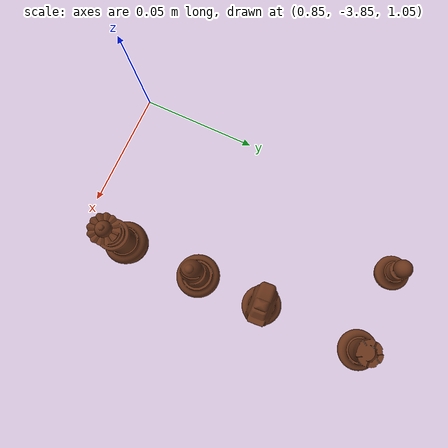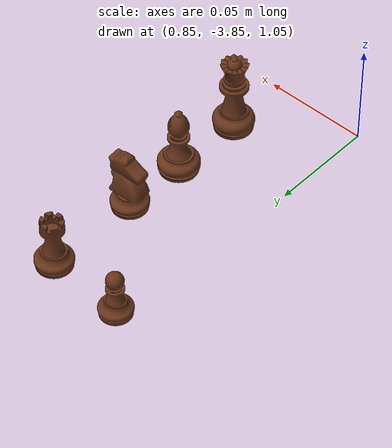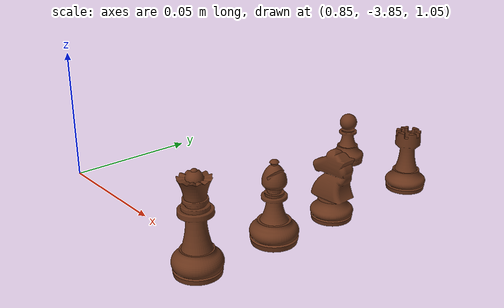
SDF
<sdf version="1.7">
 <world name="default">
  <model name="ground_plane">
   <static>1</static>
   <link name="link">
    <collision name="collision">
     <geometry><plane><normal>0 0 1</normal><size>100 100</size></plane></geometry>
     <surface>
      <contact><collide_bitmask>65535</collide_bitmask></contact>
      <friction><ode><mu>100</mu><mu2>50</mu2></ode></friction>
     </surface>
    </collision>
    <visual name="visual">
     <cast_shadows>0</cast_shadows>
     <geometry><plane><normal>0 0 1</normal><size>100 100</size></plane></geometry>
     <material>
      <script><uri>file://media/materials/scripts/gazebo.material</uri><name>Gazebo/Grey</name></script>
     </material>
    </visual>
   </link>
  </model>
  <model name="queen_black">
   <static>0</static>
   <link name="link_0">
    <inertial>
     <mass>0.01</mass>
     <inertia><ixx>1e-06</ixx><ixy>0</ixy><ixz>0</ixz><iyy>1e-06</iyy><iyz>0</iyz><izz>5e-07</izz></inertia>
    </inertial>
    <kinematic>1</kinematic>
    <visual name="visual">
     <geometry><mesh><uri>model://queen_black/meshes/queen.dae</uri><scale>1 1 1</scale></mesh></geometry>
     <material>
      <lighting>1</lighting>
      <script><uri>file://media/materials/scripts/gazebo.material</uri><name>Gazebo/Grey</name></script>
      <shader type="vertex"><normal_map>__default__</normal_map></shader>
      <ambient>0.62 0.31 0.12 1</ambient>
      <diffuse>0.4 0.2 0.1 1</diffuse>
      <specular>0.01 0.01 0.01 1</specular>
      <emissive>0 0 0 1</emissive>
     </material>
    </visual>
    <collision name="collision">
     <pose>0 0 0.015 0 -0 0</pose>
     <geometry><cylinder><radius>0.005</radius><length>0.03</length></cylinder></geometry>
     <surface>
      <friction><ode><mu>1</mu><mu2>1</mu2></ode></friction>
      <contact><ode><kp>1e+07</kp><kd>1</kd><max_vel>0.001</max_vel><min_depth>0.1</min_depth></ode></contact>
     </surface>
    </collision>
   </link>
   <pose>0.911171 -3.83568 1.02621 0 -0 0</pose>
  </model>
  <model name="bishop_black">
   <static>0</static>
   <link name="link_0">
    <inertial>
     <mass>0.01</mass>
     <inertia><ixx>1e-06</ixx><ixy>0</ixy><ixz>0</ixz><iyy>1e-06</iyy><iyz>0</iyz><izz>5e-07</izz></inertia>
    </inertial>
    <kinematic>1</kinematic>
    <visual name="visual">
     <geometry><mesh><uri>model://bishop_black/meshes/bishop.dae</uri><scale>1 1 1</scale></mesh></geometry>
     <material>
      <lighting>1</lighting>
      <script><uri>file://media/materials/scripts/gazebo.material</uri><name>Gazebo/Grey</name></script>
      <shader type="vertex"><normal_map>__default__</normal_map></shader>
      <ambient>0.62 0.31 0.12 1</ambient>
      <diffuse>0.4 0.2 0.1 1</diffuse>
      <specular>0.01 0.01 0.01 1</specular>
      <emissive>0 0 0 1</emissive>
     </material>
    </visual>
    <collision name="collision">
     <pose>0 0 0.015 0 -0 0</pose>
     <geometry><cylinder><radius>0.005</radius><length>0.03</length></cylinder></geometry>
     <surface>
      <friction><ode><mu>1</mu><mu2>1</mu2></ode></friction>
      <contact><ode><kp>1e+07</kp><kd>1</kd><max_vel>0.001</max_vel><min_depth>0.1</min_depth></ode></contact>
     </surface>
    </collision>
   </link>
   <pose>0.911171 -3.79833 1.02621 0 -0 0</pose>
  </model>
  <model name="knight_black">
   <static>0</static>
   <link name="link_0">
    <inertial>
     <mass>0.01</mass>
     <inertia><ixx>1e-06</ixx><ixy>0</ixy><ixz>0</ixz><iyy>1e-06</iyy><iyz>0</iyz><izz>5e-07</izz></inertia>
    </inertial>
    <kinematic>1</kinematic>
    <visual name="visual">
     <geometry><mesh><uri>model://knight_black/meshes/knight.dae</uri><scale>1 1 1</scale></mesh></geometry>
     <material>
      <lighting>1</lighting>
      <script><uri>file://media/materials/scripts/gazebo.material</uri><name>Gazebo/Grey</name></script>
      <shader type="vertex"><normal_map>__default__</normal_map></shader>
      <ambient>0.62 0.31 0.12 1</ambient>
      <diffuse>0.4 0.2 0.1 1</diffuse>
      <specular>0.01 0.01 0.01 1</specular>
      <emissive>0 0 0 1</emissive>
     </material>
    </visual>
    <collision name="collision">
     <pose>0 0 0.015 0 -0 0</pose>
     <geometry><cylinder><radius>0.005</radius><length>0.03</length></cylinder></geometry>
     <surface>
      <friction><ode><mu>1</mu><mu2>1</mu2></ode></friction>
      <contact><ode><kp>1e+07</kp><kd>1</kd><max_vel>0.001</max_vel><min_depth>0.1</min_depth></ode></contact>
     </surface>
    </collision>
   </link>
   <pose>0.911078 -3.76634 1.02624 -0.000163 -0.002282 -1.49951</pose>
  </model>
  <model name="rook_black">
   <static>0</static>
   <link name="link_0">
    <inertial>
     <mass>0.01</mass>
     <inertia><ixx>1e-06</ixx><ixy>0</ixy><ixz>0</ixz><iyy>1e-06</iyy><iyz>0</iyz><izz>5e-07</izz></inertia>
    </inertial>
    <kinematic>1</kinematic>
    <visual name="visual">
     <geometry><mesh><uri>model://rook_black/meshes/rook.dae</uri><scale>1 1 1</scale></mesh></geometry>
     <material>
      <lighting>1</lighting>
      <script><uri>file://media/materials/scripts/gazebo.material</uri><name>Gazebo/Grey</name></script>
      <shader type="vertex"><normal_map>__default__</normal_map></shader>
      <ambient>0.62 0.31 0.12 1</ambient>
      <diffuse>0.4 0.2 0.1 1</diffuse>
      <specular>0.01 0.01 0.01 1</specular>
      <emissive>0 0 0 1</emissive>
     </material>
    </visual>
    <collision name="collision">
     <pose>0 0 0.015 0 -0 0</pose>
     <geometry><cylinder><radius>0.005</radius><length>0.03</length></cylinder></geometry>
     <surface>
      <friction><ode><mu>1</mu><mu2>1</mu2></ode></friction>
      <contact><ode><kp>1e+07</kp><kd>1</kd><max_vel>0.001</max_vel><min_depth>0.1</min_depth></ode></contact>
     </surface>
    </collision>
   </link>
   <pose>0.911071 -3.71873 1.02621 0 -0 0</pose>
  </model>
  <model name="pawn_black">
   <static>0</static>
   <link name="link_0">
    <inertial>
     <mass>0.01</mass>
     <inertia><ixx>1e-06</ixx><ixy>0</ixy><ixz>0</ixz><iyy>1e-06</iyy><iyz>0</iyz><izz>5e-07</izz></inertia>
    </inertial>
    <kinematic>1</kinematic>
    <visual name="visual">
     <geometry><mesh><uri>model://pawn_black/meshes/pawn.dae</uri><scale>1 1 1</scale></mesh></geometry>
     <material>
      <lighting>1</lighting>
      <script><uri>file://media/materials/scripts/gazebo.material</uri><name>Gazebo/Grey</name></script>
      <shader type="vertex"><normal_map>__default__</normal_map></shader>
      <ambient>0.62 0.31 0.12 1</ambient>
      <diffuse>0.4 0.2 0.1 1</diffuse>
      <specular>0.01 0.01 0.01 1</specular>
      <emissive>0 0 0 1</emissive>
     </material>
    </visual>
    <collision name="collision">
     <pose>0 0 0.015 0 -0 0</pose>
     <geometry><cylinder><radius>0.005</radius><length>0.03</length></cylinder></geometry>
     <surface>
      <friction><ode><mu>1</mu><mu2>1</mu2></ode></friction>
      <contact><ode><kp>1e+07</kp><kd>1</kd><max_vel>0.001</max_vel><min_depth>0.1</min_depth></ode></contact>
     </surface>
    </collision>
   </link>
   <pose>0.872378 -3.71725 1.02621 0 -0 0</pose>
  </model>
 </world>
</sdf>
